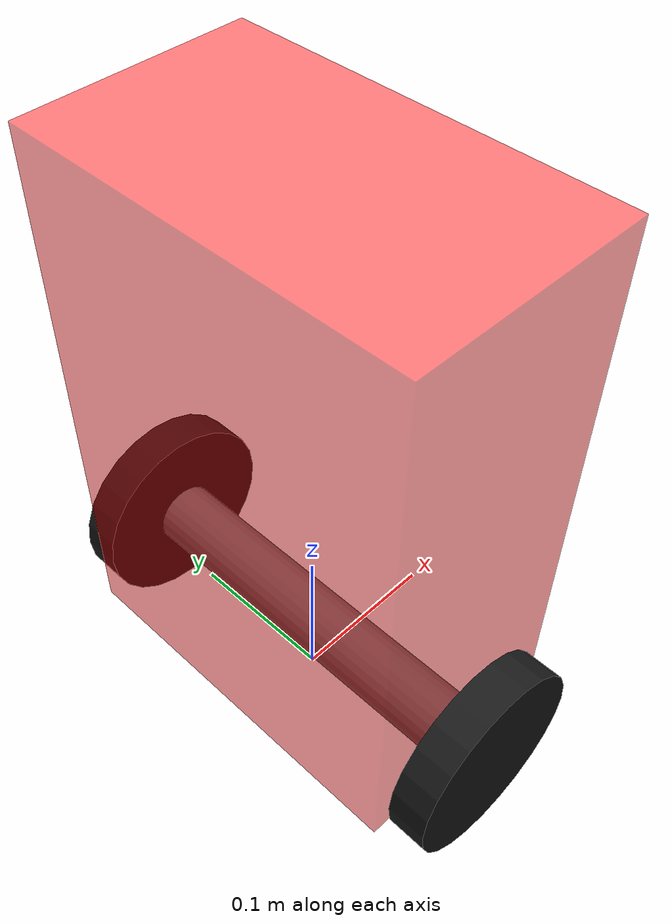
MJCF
<mujoco model="Self-Balancing Robot">

  <compiler angle="degree" inertiafromgeom="true"/>

  <option gravity="0 0 -9.81"/>

  <asset>
    <texture type="skybox" builtin="gradient" rgb1="1 1 1" rgb2="0.6 0.8 1.0" width="256" height="256"/>
  </asset>

  <worldbody>
    <body name="chassis" pos="0 0 0.20">
      <inertial pos="0.0725 0.12 0.1623"
                mass="3.353"
                fullinertia="0.22954833625 0.24512389101 0.03559648963 -0.0000325961 -0.00098122792 0.0062506144"/>
      <site name="imu_site" type="sphere" size="0.01" rgba="1 0 0 0.5"/>
      <geom name="chassis_geom" type="box" size="0.07 0.12 0.1725" rgba="127 0 0 0.5"/>
      <joint type="free" name="floating_joint"/>

      <body name="axle" pos="0 0 -0.15">
        <geom name="axle_geom" type="cylinder" fromto="0 -0.135 0 0 0.135 0" size="0.02" rgba="0.5 0.5 0.5 1" contype="0" conaffinity="0"/>

        <body name="left_wheel" pos="0 -0.135 0">
          <joint name="left_wheel_joint" type="hinge" axis="0 1 0"/>
          <geom name="left_wheel_geom" type="cylinder" size="0.0625 0.0125" rgba="0.1 0.1 0.1 1" euler="90 0 0" mass="0.2" contype="1" conaffinity="1"/>
        </body>

        <body name="right_wheel" pos="0 0.135 0">
          <joint name="right_wheel_joint" type="hinge" axis="0 1 0"/>
          <geom name="right_wheel_geom" type="cylinder" size="0.0625 0.0125" rgba="0.1 0.1 0.1 1" euler="90 0 0" mass="0.2" contype="1" conaffinity="1"/>
        </body>
      </body>
    </body>
  </worldbody>

  <contact>
    <exclude body1="chassis" body2="left_wheel"/>
    <exclude body1="chassis" body2="right_wheel"/>
  </contact>

  <actuator>
    <motor name="left_motor" joint="left_wheel_joint" gear="1" ctrllimited="true" ctrlrange="-10 10"/>
    <motor name="right_motor" joint="right_wheel_joint" gear="1" ctrllimited="true" ctrlrange="-10 10"/>
  </actuator>

  <sensor>
    <accelerometer name="accelerometer" site="imu_site"/>
    <gyro name="gyroscope" site="imu_site"/>
    <subtreecom name="robot_com" body="chassis"/>
    <jointpos name="left_wheel_pos" joint="left_wheel_joint"/>
    <jointpos name="right_wheel_pos" joint="right_wheel_joint"/>

    <jointvel name="left_wheel_vel" joint="left_wheel_joint"/>
    <jointvel name="right_wheel_vel" joint="right_wheel_joint"/>

  </sensor>

</mujoco>
